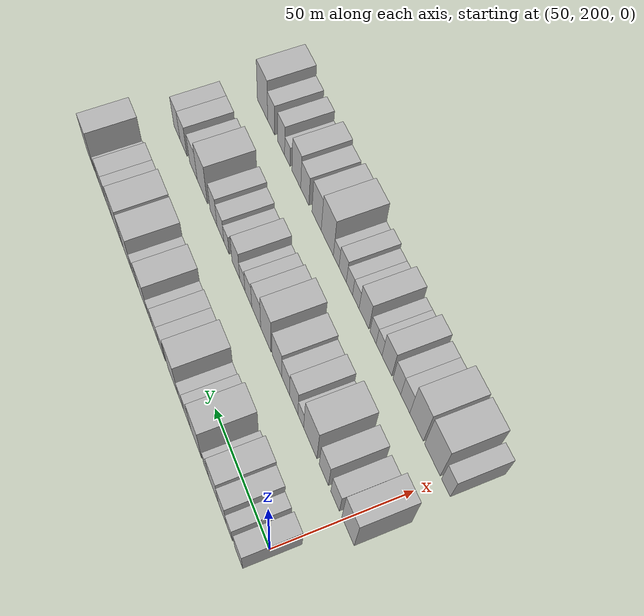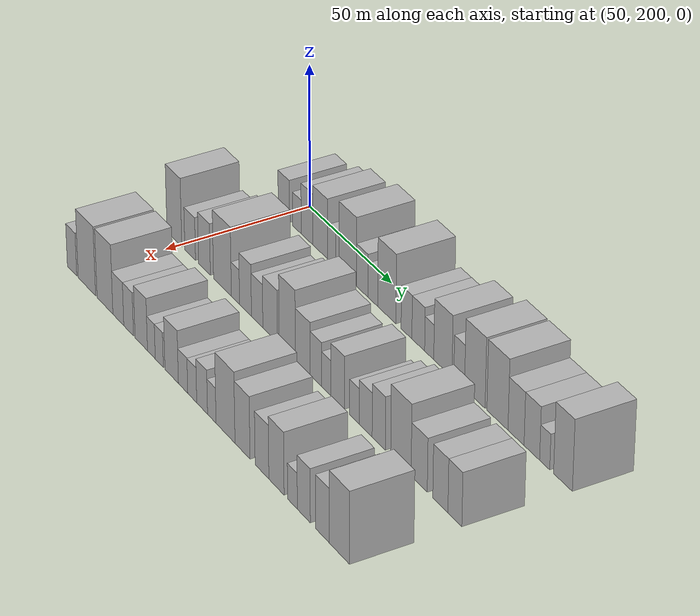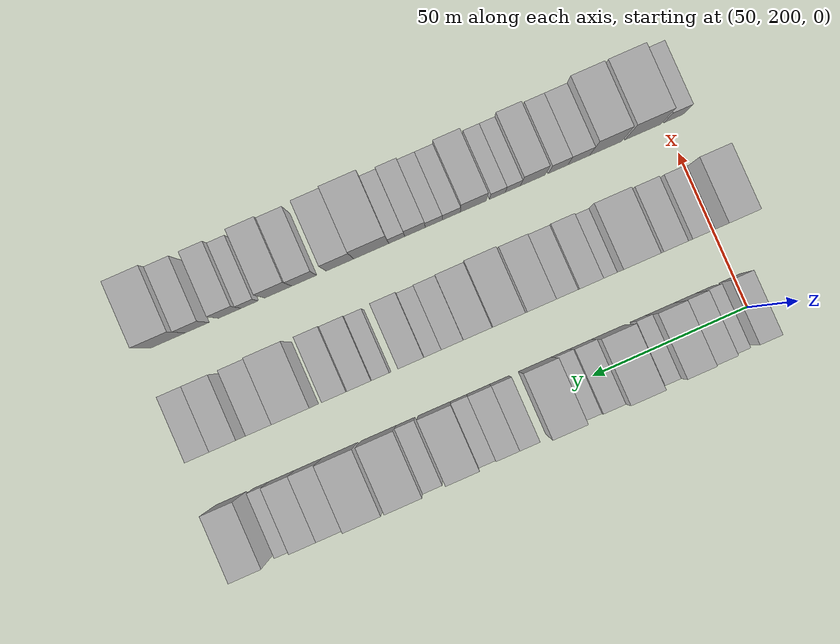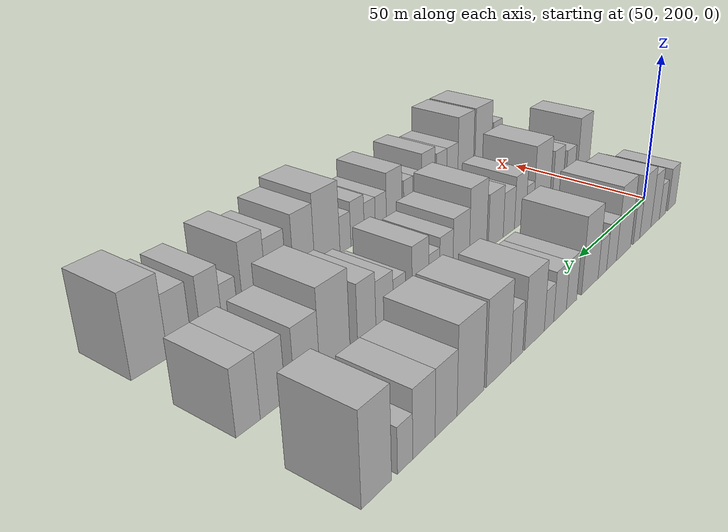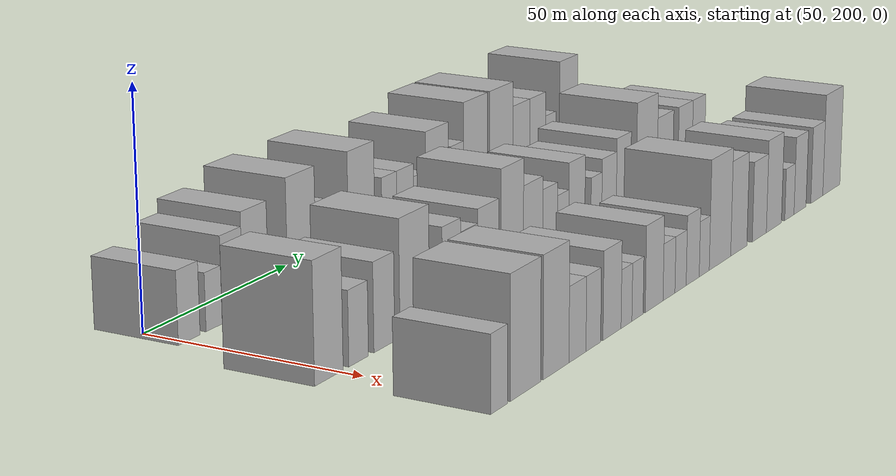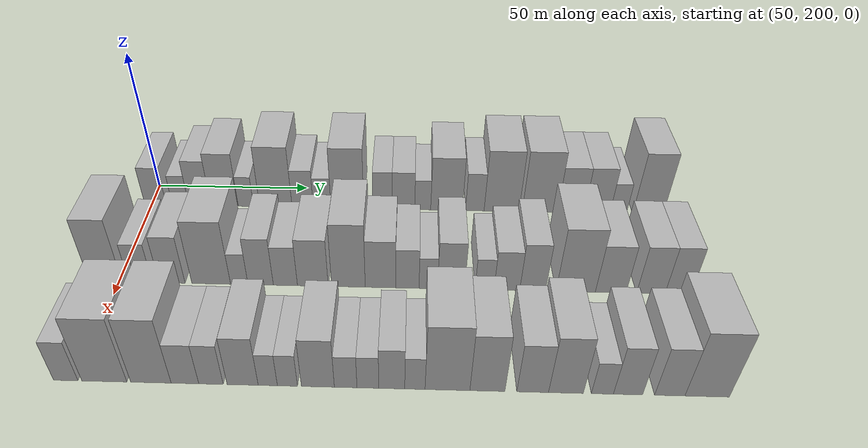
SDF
<sdf version="1.6">
 <world name="default">
  <model name="building_60">
   <static>1</static>
   <pose>50.0000 201.2474 0 0.000000 0.000000 0.000000</pose>
   <link name="link">
    <pose>0 0 7.50 0 0 0</pose>
    <collision name="collision"><geometry><box><size>20.0000 7.1210 15.0000</size></box></geometry></collision>
    <visual name="visual">
     <cast_shadows>0</cast_shadows>
     <geometry><box><size>20.0000 7.1210 15.0000</size></box></geometry>
     <material>
      <script>
       <uri>model://HANNAS_wall/materials/scripts</uri>
       <uri>model://HANNAS_wall/materials/textures</uri>
       <name>vrc/HANNAS_wall</name>
      </script>
     </material>
    </visual>
   </link>
  </model>
  <model name="building_61">
   <static>1</static>
   <pose>50.0000 209.5307 0 0.000000 0.000000 0.000000</pose>
   <link name="link">
    <pose>0 0 6.00 0 0 0</pose>
    <collision name="collision"><geometry><box><size>20.0000 5.4456 12.0000</size></box></geometry></collision>
    <visual name="visual">
     <cast_shadows>0</cast_shadows>
     <geometry><box><size>20.0000 5.4456 12.0000</size></box></geometry>
     <material>
      <script>
       <uri>model://HANNAS_wall/materials/scripts</uri>
       <uri>model://HANNAS_wall/materials/textures</uri>
       <name>vrc/HANNAS_wall</name>
      </script>
     </material>
    </visual>
   </link>
  </model>
  <model name="building_62">
   <static>1</static>
   <pose>50.0000 215.8734 0 0.000000 0.000000 0.000000</pose>
   <link name="link">
    <pose>0 0 9.00 0 0 0</pose>
    <collision name="collision"><geometry><box><size>20.0000 7.2397 18.0000</size></box></geometry></collision>
    <visual name="visual">
     <cast_shadows>0</cast_shadows>
     <geometry><box><size>20.0000 7.2397 18.0000</size></box></geometry>
     <material>
      <script>
       <uri>model://HANNAS_wall/materials/scripts</uri>
       <uri>model://HANNAS_wall/materials/textures</uri>
       <name>vrc/HANNAS_wall</name>
      </script>
     </material>
    </visual>
   </link>
  </model>
  <model name="building_63">
   <static>1</static>
   <pose>50.0000 224.0292 0 0.000000 0.000000 0.000000</pose>
   <link name="link">
    <pose>0 0 10.50 0 0 0</pose>
    <collision name="collision"><geometry><box><size>20.0000 9.0719 21.0000</size></box></geometry></collision>
    <visual name="visual">
     <cast_shadows>0</cast_shadows>
     <geometry><box><size>20.0000 9.0719 21.0000</size></box></geometry>
     <material>
      <script>
       <uri>model://HANNAS_wall/materials/scripts</uri>
       <uri>model://HANNAS_wall/materials/textures</uri>
       <name>vrc/HANNAS_wall</name>
      </script>
     </material>
    </visual>
   </link>
  </model>
  <model name="building_64">
   <static>1</static>
   <pose>50.0000 231.0862 0 0.000000 0.000000 0.000000</pose>
   <link name="link">
    <pose>0 0 6.00 0 0 0</pose>
    <collision name="collision"><geometry><box><size>20.0000 5.0421 12.0000</size></box></geometry></collision>
    <visual name="visual">
     <cast_shadows>0</cast_shadows>
     <geometry><box><size>20.0000 5.0421 12.0000</size></box></geometry>
     <material>
      <script>
       <uri>model://HANNAS_wall/materials/scripts</uri>
       <uri>model://HANNAS_wall/materials/textures</uri>
       <name>vrc/HANNAS_wall</name>
      </script>
     </material>
    </visual>
   </link>
  </model>
  <model name="building_65">
   <static>1</static>
   <pose>50.0000 240.9402 0 0.000000 0.000000 0.000000</pose>
   <link name="link">
    <pose>0 0 12.00 0 0 0</pose>
    <collision name="collision"><geometry><box><size>20.0000 10.6659 24.0000</size></box></geometry></collision>
    <visual name="visual">
     <cast_shadows>0</cast_shadows>
     <geometry><box><size>20.0000 10.6659 24.0000</size></box></geometry>
     <material>
      <script>
       <uri>model://HANNAS_wall/materials/scripts</uri>
       <uri>model://HANNAS_wall/materials/textures</uri>
       <name>vrc/HANNAS_wall</name>
      </script>
     </material>
    </visual>
   </link>
  </model>
  <model name="building_66">
   <static>1</static>
   <pose>50.0000 249.7533 0 0.000000 0.000000 0.000000</pose>
   <link name="link">
    <pose>0 0 7.50 0 0 0</pose>
    <collision name="collision"><geometry><box><size>20.0000 6.9602 15.0000</size></box></geometry></collision>
    <visual name="visual">
     <cast_shadows>0</cast_shadows>
     <geometry><box><size>20.0000 6.9602 15.0000</size></box></geometry>
     <material>
      <script>
       <uri>model://HANNAS_wall/materials/scripts</uri>
       <uri>model://HANNAS_wall/materials/textures</uri>
       <name>vrc/HANNAS_wall</name>
      </script>
     </material>
    </visual>
   </link>
  </model>
  <model name="building_67">
   <static>1</static>
   <pose>50.0000 256.1272 0 0.000000 0.000000 0.000000</pose>
   <link name="link">
    <pose>0 0 6.00 0 0 0</pose>
    <collision name="collision"><geometry><box><size>20.0000 5.7877 12.0000</size></box></geometry></collision>
    <visual name="visual">
     <cast_shadows>0</cast_shadows>
     <geometry><box><size>20.0000 5.7877 12.0000</size></box></geometry>
     <material>
      <script>
       <uri>model://HANNAS_wall/materials/scripts</uri>
       <uri>model://HANNAS_wall/materials/textures</uri>
       <name>vrc/HANNAS_wall</name>
      </script>
     </material>
    </visual>
   </link>
  </model>
  <model name="building_68">
   <static>1</static>
   <pose>50.0000 264.3679 0 0.000000 0.000000 0.000000</pose>
   <link name="link">
    <pose>0 0 12.00 0 0 0</pose>
    <collision name="collision"><geometry><box><size>20.0000 10.6935 24.0000</size></box></geometry></collision>
    <visual name="visual">
     <cast_shadows>0</cast_shadows>
     <geometry><box><size>20.0000 10.6935 24.0000</size></box></geometry>
     <material>
      <script>
       <uri>model://HANNAS_wall/materials/scripts</uri>
       <uri>model://HANNAS_wall/materials/textures</uri>
       <name>vrc/HANNAS_wall</name>
      </script>
     </material>
    </visual>
   </link>
  </model>
  <model name="building_69">
   <static>1</static>
   <pose>50.0000 275.8604 0 0.000000 0.000000 0.000000</pose>
   <link name="link">
    <pose>0 0 7.50 0 0 0</pose>
    <collision name="collision"><geometry><box><size>20.0000 6.2914 15.0000</size></box></geometry></collision>
    <visual name="visual">
     <cast_shadows>0</cast_shadows>
     <geometry><box><size>20.0000 6.2914 15.0000</size></box></geometry>
     <material>
      <script>
       <uri>model://HANNAS_wall/materials/scripts</uri>
       <uri>model://HANNAS_wall/materials/textures</uri>
       <name>vrc/HANNAS_wall</name>
      </script>
     </material>
    </visual>
   </link>
  </model>
  <model name="building_70">
   <static>1</static>
   <pose>50.0000 282.6776 0 0.000000 0.000000 0.000000</pose>
   <link name="link">
    <pose>0 0 7.50 0 0 0</pose>
    <collision name="collision"><geometry><box><size>20.0000 7.3430 15.0000</size></box></geometry></collision>
    <visual name="visual">
     <cast_shadows>0</cast_shadows>
     <geometry><box><size>20.0000 7.3430 15.0000</size></box></geometry>
     <material>
      <script>
       <uri>model://HANNAS_wall/materials/scripts</uri>
       <uri>model://HANNAS_wall/materials/textures</uri>
       <name>vrc/HANNAS_wall</name>
      </script>
     </material>
    </visual>
   </link>
  </model>
  <model name="building_71">
   <static>1</static>
   <pose>50.0000 288.9571 0 0.000000 0.000000 0.000000</pose>
   <link name="link">
    <pose>0 0 6.00 0 0 0</pose>
    <collision name="collision"><geometry><box><size>20.0000 5.2160 12.0000</size></box></geometry></collision>
    <visual name="visual">
     <cast_shadows>0</cast_shadows>
     <geometry><box><size>20.0000 5.2160 12.0000</size></box></geometry>
     <material>
      <script>
       <uri>model://HANNAS_wall/materials/scripts</uri>
       <uri>model://HANNAS_wall/materials/textures</uri>
       <name>vrc/HANNAS_wall</name>
      </script>
     </material>
    </visual>
   </link>
  </model>
  <model name="building_72">
   <static>1</static>
   <pose>50.0000 296.7286 0 0.000000 0.000000 0.000000</pose>
   <link name="link">
    <pose>0 0 10.50 0 0 0</pose>
    <collision name="collision"><geometry><box><size>20.0000 10.3270 21.0000</size></box></geometry></collision>
    <visual name="visual">
     <cast_shadows>0</cast_shadows>
     <geometry><box><size>20.0000 10.3270 21.0000</size></box></geometry>
     <material>
      <script>
       <uri>model://HANNAS_wall/materials/scripts</uri>
       <uri>model://HANNAS_wall/materials/textures</uri>
       <name>vrc/HANNAS_wall</name>
      </script>
     </material>
    </visual>
   </link>
  </model>
  <model name="building_73">
   <static>1</static>
   <pose>50.0000 305.9054 0 0.000000 0.000000 0.000000</pose>
   <link name="link">
    <pose>0 0 7.50 0 0 0</pose>
    <collision name="collision"><geometry><box><size>20.0000 6.0267 15.0000</size></box></geometry></collision>
    <visual name="visual">
     <cast_shadows>0</cast_shadows>
     <geometry><box><size>20.0000 6.0267 15.0000</size></box></geometry>
     <material>
      <script>
       <uri>model://HANNAS_wall/materials/scripts</uri>
       <uri>model://HANNAS_wall/materials/textures</uri>
       <name>vrc/HANNAS_wall</name>
      </script>
     </material>
    </visual>
   </link>
  </model>
  <model name="building_74">
   <static>1</static>
   <pose>50.0000 314.5827 0 0.000000 0.000000 0.000000</pose>
   <link name="link">
    <pose>0 0 12.00 0 0 0</pose>
    <collision name="collision"><geometry><box><size>20.0000 11.3279 24.0000</size></box></geometry></collision>
    <visual name="visual">
     <cast_shadows>0</cast_shadows>
     <geometry><box><size>20.0000 11.3279 24.0000</size></box></geometry>
     <material>
      <script>
       <uri>model://HANNAS_wall/materials/scripts</uri>
       <uri>model://HANNAS_wall/materials/textures</uri>
       <name>vrc/HANNAS_wall</name>
      </script>
     </material>
    </visual>
   </link>
  </model>
  <model name="building_75">
   <static>1</static>
   <pose>50.0000 326.9837 0 0.000000 0.000000 0.000000</pose>
   <link name="link">
    <pose>0 0 12.00 0 0 0</pose>
    <collision name="collision"><geometry><box><size>20.0000 11.4740 24.0000</size></box></geometry></collision>
    <visual name="visual">
     <cast_shadows>0</cast_shadows>
     <geometry><box><size>20.0000 11.4740 24.0000</size></box></geometry>
     <material>
      <script>
       <uri>model://HANNAS_wall/materials/scripts</uri>
       <uri>model://HANNAS_wall/materials/textures</uri>
       <name>vrc/HANNAS_wall</name>
      </script>
     </material>
    </visual>
   </link>
  </model>
  <model name="building_76">
   <static>1</static>
   <pose>50.0000 337.0319 0 0.000000 0.000000 0.000000</pose>
   <link name="link">
    <pose>0 0 9.00 0 0 0</pose>
    <collision name="collision"><geometry><box><size>20.0000 8.6222 18.0000</size></box></geometry></collision>
    <visual name="visual">
     <cast_shadows>0</cast_shadows>
     <geometry><box><size>20.0000 8.6222 18.0000</size></box></geometry>
     <material>
      <script>
       <uri>model://HANNAS_wall/materials/scripts</uri>
       <uri>model://HANNAS_wall/materials/textures</uri>
       <name>vrc/HANNAS_wall</name>
      </script>
     </material>
    </visual>
   </link>
  </model>
  <model name="building_77">
   <static>1</static>
   <pose>50.0000 345.4763 0 0.000000 0.000000 0.000000</pose>
   <link name="link">
    <pose>0 0 9.00 0 0 0</pose>
    <collision name="collision"><geometry><box><size>20.0000 8.2667 18.0000</size></box></geometry></collision>
    <visual name="visual">
     <cast_shadows>0</cast_shadows>
     <geometry><box><size>20.0000 8.2667 18.0000</size></box></geometry>
     <material>
      <script>
       <uri>model://HANNAS_wall/materials/scripts</uri>
       <uri>model://HANNAS_wall/materials/textures</uri>
       <name>vrc/HANNAS_wall</name>
      </script>
     </material>
    </visual>
   </link>
  </model>
  <model name="building_78">
   <static>1</static>
   <pose>50.0000 352.2706 0 0.000000 0.000000 0.000000</pose>
   <link name="link">
    <pose>0 0 6.00 0 0 0</pose>
    <collision name="collision"><geometry><box><size>20.0000 5.3217 12.0000</size></box></geometry></collision>
    <visual name="visual">
     <cast_shadows>0</cast_shadows>
     <geometry><box><size>20.0000 5.3217 12.0000</size></box></geometry>
     <material>
      <script>
       <uri>model://HANNAS_wall/materials/scripts</uri>
       <uri>model://HANNAS_wall/materials/textures</uri>
       <name>vrc/HANNAS_wall</name>
      </script>
     </material>
    </visual>
   </link>
  </model>
  <model name="building_79">
   <static>1</static>
   <pose>50.0000 361.8239 0 0.000000 0.000000 0.000000</pose>
   <link name="link">
    <pose>0 0 12.00 0 0 0</pose>
    <collision name="collision"><geometry><box><size>20.0000 9.7850 24.0000</size></box></geometry></collision>
    <visual name="visual">
     <cast_shadows>0</cast_shadows>
     <geometry><box><size>20.0000 9.7850 24.0000</size></box></geometry>
     <material>
      <script>
       <uri>model://HANNAS_wall/materials/scripts</uri>
       <uri>model://HANNAS_wall/materials/textures</uri>
       <name>vrc/HANNAS_wall</name>
      </script>
     </material>
    </visual>
   </link>
  </model>
  <model name="building_144">
   <static>1</static>
   <pose>85.0000 196.1090 0 0.000000 0.000000 0.000000</pose>
   <link name="link">
    <pose>0 0 12.00 0 0 0</pose>
    <collision name="collision"><geometry><box><size>20.0000 9.7561 24.0000</size></box></geometry></collision>
    <visual name="visual">
     <cast_shadows>0</cast_shadows>
     <geometry><box><size>20.0000 9.7561 24.0000</size></box></geometry>
     <material>
      <script>
       <uri>model://HANNAS_wall/materials/scripts</uri>
       <uri>model://HANNAS_wall/materials/textures</uri>
       <name>vrc/HANNAS_wall</name>
      </script>
     </material>
    </visual>
   </link>
  </model>
  <model name="building_145">
   <static>1</static>
   <pose>85.0000 206.4608 0 0.000000 0.000000 0.000000</pose>
   <link name="link">
    <pose>0 0 7.50 0 0 0</pose>
    <collision name="collision"><geometry><box><size>20.0000 6.9476 15.0000</size></box></geometry></collision>
    <visual name="visual">
     <cast_shadows>0</cast_shadows>
     <geometry><box><size>20.0000 6.9476 15.0000</size></box></geometry>
     <material>
      <script>
       <uri>model://HANNAS_wall/materials/scripts</uri>
       <uri>model://HANNAS_wall/materials/textures</uri>
       <name>vrc/HANNAS_wall</name>
      </script>
     </material>
    </visual>
   </link>
  </model>
  <model name="building_146">
   <static>1</static>
   <pose>85.0000 215.7360 0 0.000000 0.000000 0.000000</pose>
   <link name="link">
    <pose>0 0 9.00 0 0 0</pose>
    <collision name="collision"><geometry><box><size>20.0000 7.6029 18.0000</size></box></geometry></collision>
    <visual name="visual">
     <cast_shadows>0</cast_shadows>
     <geometry><box><size>20.0000 7.6029 18.0000</size></box></geometry>
     <material>
      <script>
       <uri>model://HANNAS_wall/materials/scripts</uri>
       <uri>model://HANNAS_wall/materials/textures</uri>
       <name>vrc/HANNAS_wall</name>
      </script>
     </material>
    </visual>
   </link>
  </model>
  <model name="building_147">
   <static>1</static>
   <pose>85.0000 227.2074 0 0.000000 0.000000 0.000000</pose>
   <link name="link">
    <pose>0 0 12.00 0 0 0</pose>
    <collision name="collision"><geometry><box><size>20.0000 11.3399 24.0000</size></box></geometry></collision>
    <visual name="visual">
     <cast_shadows>0</cast_shadows>
     <geometry><box><size>20.0000 11.3399 24.0000</size></box></geometry>
     <material>
      <script>
       <uri>model://HANNAS_wall/materials/scripts</uri>
       <uri>model://HANNAS_wall/materials/textures</uri>
       <name>vrc/HANNAS_wall</name>
      </script>
     </material>
    </visual>
   </link>
  </model>
  <model name="building_148">
   <static>1</static>
   <pose>85.0000 235.4371 0 0.000000 0.000000 0.000000</pose>
   <link name="link">
    <pose>0 0 6.00 0 0 0</pose>
    <collision name="collision"><geometry><box><size>20.0000 5.1196 12.0000</size></box></geometry></collision>
    <visual name="visual">
     <cast_shadows>0</cast_shadows>
     <geometry><box><size>20.0000 5.1196 12.0000</size></box></geometry>
     <material>
      <script>
       <uri>model://HANNAS_wall/materials/scripts</uri>
       <uri>model://HANNAS_wall/materials/textures</uri>
       <name>vrc/HANNAS_wall</name>
      </script>
     </material>
    </visual>
   </link>
  </model>
  <model name="building_149">
   <static>1</static>
   <pose>85.0000 241.7086 0 0.000000 0.000000 0.000000</pose>
   <link name="link">
    <pose>0 0 9.00 0 0 0</pose>
    <collision name="collision"><geometry><box><size>20.0000 7.4233 18.0000</size></box></geometry></collision>
    <visual name="visual">
     <cast_shadows>0</cast_shadows>
     <geometry><box><size>20.0000 7.4233 18.0000</size></box></geometry>
     <material>
      <script>
       <uri>model://HANNAS_wall/materials/scripts</uri>
       <uri>model://HANNAS_wall/materials/textures</uri>
       <name>vrc/HANNAS_wall</name>
      </script>
     </material>
    </visual>
   </link>
  </model>
  <model name="building_150">
   <static>1</static>
   <pose>85.0000 248.9426 0 0.000000 0.000000 0.000000</pose>
   <link name="link">
    <pose>0 0 7.50 0 0 0</pose>
    <collision name="collision"><geometry><box><size>20.0000 7.0448 15.0000</size></box></geometry></collision>
    <visual name="visual">
     <cast_shadows>0</cast_shadows>
     <geometry><box><size>20.0000 7.0448 15.0000</size></box></geometry>
     <material>
      <script>
       <uri>model://HANNAS_wall/materials/scripts</uri>
       <uri>model://HANNAS_wall/materials/textures</uri>
       <name>vrc/HANNAS_wall</name>
      </script>
     </material>
    </visual>
   </link>
  </model>
  <model name="building_151">
   <static>1</static>
   <pose>85.0000 256.9491 0 0.000000 0.000000 0.000000</pose>
   <link name="link">
    <pose>0 0 9.00 0 0 0</pose>
    <collision name="collision"><geometry><box><size>20.0000 8.9681 18.0000</size></box></geometry></collision>
    <visual name="visual">
     <cast_shadows>0</cast_shadows>
     <geometry><box><size>20.0000 8.9681 18.0000</size></box></geometry>
     <material>
      <script>
       <uri>model://HANNAS_wall/materials/scripts</uri>
       <uri>model://HANNAS_wall/materials/textures</uri>
       <name>vrc/HANNAS_wall</name>
      </script>
     </material>
    </visual>
   </link>
  </model>
  <model name="building_152">
   <static>1</static>
   <pose>85.0000 267.3245 0 0.000000 0.000000 0.000000</pose>
   <link name="link">
    <pose>0 0 12.00 0 0 0</pose>
    <collision name="collision"><geometry><box><size>20.0000 9.7828 24.0000</size></box></geometry></collision>
    <visual name="visual">
     <cast_shadows>0</cast_shadows>
     <geometry><box><size>20.0000 9.7828 24.0000</size></box></geometry>
     <material>
      <script>
       <uri>model://HANNAS_wall/materials/scripts</uri>
       <uri>model://HANNAS_wall/materials/textures</uri>
       <name>vrc/HANNAS_wall</name>
      </script>
     </material>
    </visual>
   </link>
  </model>
  <model name="building_153">
   <static>1</static>
   <pose>85.0000 276.6133 0 0.000000 0.000000 0.000000</pose>
   <link name="link">
    <pose>0 0 9.00 0 0 0</pose>
    <collision name="collision"><geometry><box><size>20.0000 8.7950 18.0000</size></box></geometry></collision>
    <visual name="visual">
     <cast_shadows>0</cast_shadows>
     <geometry><box><size>20.0000 8.7950 18.0000</size></box></geometry>
     <material>
      <script>
       <uri>model://HANNAS_wall/materials/scripts</uri>
       <uri>model://HANNAS_wall/materials/textures</uri>
       <name>vrc/HANNAS_wall</name>
      </script>
     </material>
    </visual>
   </link>
  </model>
  <model name="building_154">
   <static>1</static>
   <pose>85.0000 284.3997 0 0.000000 0.000000 0.000000</pose>
   <link name="link">
    <pose>0 0 7.50 0 0 0</pose>
    <collision name="collision"><geometry><box><size>20.0000 6.7778 15.0000</size></box></geometry></collision>
    <visual name="visual">
     <cast_shadows>0</cast_shadows>
     <geometry><box><size>20.0000 6.7778 15.0000</size></box></geometry>
     <material>
      <script>
       <uri>model://HANNAS_wall/materials/scripts</uri>
       <uri>model://HANNAS_wall/materials/textures</uri>
       <name>vrc/HANNAS_wall</name>
      </script>
     </material>
    </visual>
   </link>
  </model>
  <model name="building_155">
   <static>1</static>
   <pose>85.0000 290.4662 0 0.000000 0.000000 0.000000</pose>
   <link name="link">
    <pose>0 0 6.00 0 0 0</pose>
    <collision name="collision"><geometry><box><size>20.0000 5.3551 12.0000</size></box></geometry></collision>
    <visual name="visual">
     <cast_shadows>0</cast_shadows>
     <geometry><box><size>20.0000 5.3551 12.0000</size></box></geometry>
     <material>
      <script>
       <uri>model://HANNAS_wall/materials/scripts</uri>
       <uri>model://HANNAS_wall/materials/textures</uri>
       <name>vrc/HANNAS_wall</name>
      </script>
     </material>
    </visual>
   </link>
  </model>
  <model name="building_156">
   <static>1</static>
   <pose>85.0000 297.0790 0 0.000000 0.000000 0.000000</pose>
   <link name="link">
    <pose>0 0 9.00 0 0 0</pose>
    <collision name="collision"><geometry><box><size>20.0000 7.8705 18.0000</size></box></geometry></collision>
    <visual name="visual">
     <cast_shadows>0</cast_shadows>
     <geometry><box><size>20.0000 7.8705 18.0000</size></box></geometry>
     <material>
      <script>
       <uri>model://HANNAS_wall/materials/scripts</uri>
       <uri>model://HANNAS_wall/materials/textures</uri>
       <name>vrc/HANNAS_wall</name>
      </script>
     </material>
    </visual>
   </link>
  </model>
  <model name="building_157">
   <static>1</static>
   <pose>85.0000 306.7472 0 0.000000 0.000000 0.000000</pose>
   <link name="link">
    <pose>0 0 6.00 0 0 0</pose>
    <collision name="collision"><geometry><box><size>20.0000 5.4659 12.0000</size></box></geometry></collision>
    <visual name="visual">
     <cast_shadows>0</cast_shadows>
     <geometry><box><size>20.0000 5.4659 12.0000</size></box></geometry>
     <material>
      <script>
       <uri>model://HANNAS_wall/materials/scripts</uri>
       <uri>model://HANNAS_wall/materials/textures</uri>
       <name>vrc/HANNAS_wall</name>
      </script>
     </material>
    </visual>
   </link>
  </model>
  <model name="building_158">
   <static>1</static>
   <pose>85.0000 313.1926 0 0.000000 0.000000 0.000000</pose>
   <link name="link">
    <pose>0 0 7.50 0 0 0</pose>
    <collision name="collision"><geometry><box><size>20.0000 7.4248 15.0000</size></box></geometry></collision>
    <visual name="visual">
     <cast_shadows>0</cast_shadows>
     <geometry><box><size>20.0000 7.4248 15.0000</size></box></geometry>
     <material>
      <script>
       <uri>model://HANNAS_wall/materials/scripts</uri>
       <uri>model://HANNAS_wall/materials/textures</uri>
       <name>vrc/HANNAS_wall</name>
      </script>
     </material>
    </visual>
   </link>
  </model>
  <model name="building_159">
   <static>1</static>
   <pose>85.0000 320.6244 0 0.000000 0.000000 0.000000</pose>
   <link name="link">
    <pose>0 0 9.00 0 0 0</pose>
    <collision name="collision"><geometry><box><size>20.0000 7.4389 18.0000</size></box></geometry></collision>
    <visual name="visual">
     <cast_shadows>0</cast_shadows>
     <geometry><box><size>20.0000 7.4389 18.0000</size></box></geometry>
     <material>
      <script>
       <uri>model://HANNAS_wall/materials/scripts</uri>
       <uri>model://HANNAS_wall/materials/textures</uri>
       <name>vrc/HANNAS_wall</name>
      </script>
     </material>
    </visual>
   </link>
  </model>
  <model name="building_160">
   <static>1</static>
   <pose>85.0000 332.9975 0 0.000000 0.000000 0.000000</pose>
   <link name="link">
    <pose>0 0 12.00 0 0 0</pose>
    <collision name="collision"><geometry><box><size>20.0000 11.3073 24.0000</size></box></geometry></collision>
    <visual name="visual">
     <cast_shadows>0</cast_shadows>
     <geometry><box><size>20.0000 11.3073 24.0000</size></box></geometry>
     <material>
      <script>
       <uri>model://HANNAS_wall/materials/scripts</uri>
       <uri>model://HANNAS_wall/materials/textures</uri>
       <name>vrc/HANNAS_wall</name>
      </script>
     </material>
    </visual>
   </link>
  </model>
  <model name="building_161">
   <static>1</static>
   <pose>85.0000 343.0592 0 0.000000 0.000000 0.000000</pose>
   <link name="link">
    <pose>0 0 9.00 0 0 0</pose>
    <collision name="collision"><geometry><box><size>20.0000 8.8162 18.0000</size></box></geometry></collision>
    <visual name="visual">
     <cast_shadows>0</cast_shadows>
     <geometry><box><size>20.0000 8.8162 18.0000</size></box></geometry>
     <material>
      <script>
       <uri>model://HANNAS_wall/materials/scripts</uri>
       <uri>model://HANNAS_wall/materials/textures</uri>
       <name>vrc/HANNAS_wall</name>
      </script>
     </material>
    </visual>
   </link>
  </model>
  <model name="building_162">
   <static>1</static>
   <pose>85.0000 354.5373 0 0.000000 0.000000 0.000000</pose>
   <link name="link">
    <pose>0 0 9.00 0 0 0</pose>
    <collision name="collision"><geometry><box><size>20.0000 8.1399 18.0000</size></box></geometry></collision>
    <visual name="visual">
     <cast_shadows>0</cast_shadows>
     <geometry><box><size>20.0000 8.1399 18.0000</size></box></geometry>
     <material>
      <script>
       <uri>model://HANNAS_wall/materials/scripts</uri>
       <uri>model://HANNAS_wall/materials/textures</uri>
       <name>vrc/HANNAS_wall</name>
      </script>
     </material>
    </visual>
   </link>
  </model>
  <model name="building_163">
   <static>1</static>
   <pose>85.0000 362.3222 0 0.000000 0.000000 0.000000</pose>
   <link name="link">
    <pose>0 0 9.00 0 0 0</pose>
    <collision name="collision"><geometry><box><size>20.0000 7.4299 18.0000</size></box></geometry></collision>
    <visual name="visual">
     <cast_shadows>0</cast_shadows>
     <geometry><box><size>20.0000 7.4299 18.0000</size></box></geometry>
     <material>
      <script>
       <uri>model://HANNAS_wall/materials/scripts</uri>
       <uri>model://HANNAS_wall/materials/textures</uri>
       <name>vrc/HANNAS_wall</name>
      </script>
     </material>
    </visual>
   </link>
  </model>
  <model name="building_225">
   <static>1</static>
   <pose>120.0000 197.1909 0 0.000000 0.000000 0.000000</pose>
   <link name="link">
    <pose>0 0 7.50 0 0 0</pose>
    <collision name="collision"><geometry><box><size>20.0000 6.3347 15.0000</size></box></geometry></collision>
    <visual name="visual">
     <cast_shadows>0</cast_shadows>
     <geometry><box><size>20.0000 6.3347 15.0000</size></box></geometry>
     <material>
      <script>
       <uri>model://HANNAS_wall/materials/scripts</uri>
       <uri>model://HANNAS_wall/materials/textures</uri>
       <name>vrc/HANNAS_wall</name>
      </script>
     </material>
    </visual>
   </link>
  </model>
  <model name="building_226">
   <static>1</static>
   <pose>120.0000 207.1888 0 0.000000 0.000000 0.000000</pose>
   <link name="link">
    <pose>0 0 12.00 0 0 0</pose>
    <collision name="collision"><geometry><box><size>20.0000 11.6610 24.0000</size></box></geometry></collision>
    <visual name="visual">
     <cast_shadows>0</cast_shadows>
     <geometry><box><size>20.0000 11.6610 24.0000</size></box></geometry>
     <material>
      <script>
       <uri>model://HANNAS_wall/materials/scripts</uri>
       <uri>model://HANNAS_wall/materials/textures</uri>
       <name>vrc/HANNAS_wall</name>
      </script>
     </material>
    </visual>
   </link>
  </model>
  <model name="building_227">
   <static>1</static>
   <pose>120.0000 219.2376 0 0.000000 0.000000 0.000000</pose>
   <link name="link">
    <pose>0 0 12.00 0 0 0</pose>
    <collision name="collision"><geometry><box><size>20.0000 10.4367 24.0000</size></box></geometry></collision>
    <visual name="visual">
     <cast_shadows>0</cast_shadows>
     <geometry><box><size>20.0000 10.4367 24.0000</size></box></geometry>
     <material>
      <script>
       <uri>model://HANNAS_wall/materials/scripts</uri>
       <uri>model://HANNAS_wall/materials/textures</uri>
       <name>vrc/HANNAS_wall</name>
      </script>
     </material>
    </visual>
   </link>
  </model>
  <model name="building_228">
   <static>1</static>
   <pose>120.0000 228.0145 0 0.000000 0.000000 0.000000</pose>
   <link name="link">
    <pose>0 0 7.50 0 0 0</pose>
    <collision name="collision"><geometry><box><size>20.0000 7.1171 15.0000</size></box></geometry></collision>
    <visual name="visual">
     <cast_shadows>0</cast_shadows>
     <geometry><box><size>20.0000 7.1171 15.0000</size></box></geometry>
     <material>
      <script>
       <uri>model://HANNAS_wall/materials/scripts</uri>
       <uri>model://HANNAS_wall/materials/textures</uri>
       <name>vrc/HANNAS_wall</name>
      </script>
     </material>
    </visual>
   </link>
  </model>
  <model name="building_229">
   <static>1</static>
   <pose>120.0000 234.7167 0 0.000000 0.000000 0.000000</pose>
   <link name="link">
    <pose>0 0 7.50 0 0 0</pose>
    <collision name="collision"><geometry><box><size>20.0000 6.2872 15.0000</size></box></geometry></collision>
    <visual name="visual">
     <cast_shadows>0</cast_shadows>
     <geometry><box><size>20.0000 6.2872 15.0000</size></box></geometry>
     <material>
      <script>
       <uri>model://HANNAS_wall/materials/scripts</uri>
       <uri>model://HANNAS_wall/materials/textures</uri>
       <name>vrc/HANNAS_wall</name>
      </script>
     </material>
    </visual>
   </link>
  </model>
  <model name="building_230">
   <static>1</static>
   <pose>120.0000 242.8513 0 0.000000 0.000000 0.000000</pose>
   <link name="link">
    <pose>0 0 9.00 0 0 0</pose>
    <collision name="collision"><geometry><box><size>20.0000 7.9821 18.0000</size></box></geometry></collision>
    <visual name="visual">
     <cast_shadows>0</cast_shadows>
     <geometry><box><size>20.0000 7.9821 18.0000</size></box></geometry>
     <material>
      <script>
       <uri>model://HANNAS_wall/materials/scripts</uri>
       <uri>model://HANNAS_wall/materials/textures</uri>
       <name>vrc/HANNAS_wall</name>
      </script>
     </material>
    </visual>
   </link>
  </model>
  <model name="building_231">
   <static>1</static>
   <pose>120.0000 249.3038 0 0.000000 0.000000 0.000000</pose>
   <link name="link">
    <pose>0 0 6.00 0 0 0</pose>
    <collision name="collision"><geometry><box><size>20.0000 4.9229 12.0000</size></box></geometry></collision>
    <visual name="visual">
     <cast_shadows>0</cast_shadows>
     <geometry><box><size>20.0000 4.9229 12.0000</size></box></geometry>
     <material>
      <script>
       <uri>model://HANNAS_wall/materials/scripts</uri>
       <uri>model://HANNAS_wall/materials/textures</uri>
       <name>vrc/HANNAS_wall</name>
      </script>
     </material>
    </visual>
   </link>
  </model>
  <model name="building_232">
   <static>1</static>
   <pose>120.0000 254.3354 0 0.000000 0.000000 0.000000</pose>
   <link name="link">
    <pose>0 0 6.00 0 0 0</pose>
    <collision name="collision"><geometry><box><size>20.0000 5.1401 12.0000</size></box></geometry></collision>
    <visual name="visual">
     <cast_shadows>0</cast_shadows>
     <geometry><box><size>20.0000 5.1401 12.0000</size></box></geometry>
     <material>
      <script>
       <uri>model://HANNAS_wall/materials/scripts</uri>
       <uri>model://HANNAS_wall/materials/textures</uri>
       <name>vrc/HANNAS_wall</name>
      </script>
     </material>
    </visual>
   </link>
  </model>
  <model name="building_233">
   <static>1</static>
   <pose>120.0000 262.1131 0 0.000000 0.000000 0.000000</pose>
   <link name="link">
    <pose>0 0 9.00 0 0 0</pose>
    <collision name="collision"><geometry><box><size>20.0000 8.4153 18.0000</size></box></geometry></collision>
    <visual name="visual">
     <cast_shadows>0</cast_shadows>
     <geometry><box><size>20.0000 8.4153 18.0000</size></box></geometry>
     <material>
      <script>
       <uri>model://HANNAS_wall/materials/scripts</uri>
       <uri>model://HANNAS_wall/materials/textures</uri>
       <name>vrc/HANNAS_wall</name>
      </script>
     </material>
    </visual>
   </link>
  </model>
  <model name="building_234">
   <static>1</static>
   <pose>120.0000 269.2053 0 0.000000 0.000000 0.000000</pose>
   <link name="link">
    <pose>0 0 6.00 0 0 0</pose>
    <collision name="collision"><geometry><box><size>20.0000 5.7690 12.0000</size></box></geometry></collision>
    <visual name="visual">
     <cast_shadows>0</cast_shadows>
     <geometry><box><size>20.0000 5.7690 12.0000</size></box></geometry>
     <material>
      <script>
       <uri>model://HANNAS_wall/materials/scripts</uri>
       <uri>model://HANNAS_wall/materials/textures</uri>
       <name>vrc/HANNAS_wall</name>
      </script>
     </material>
    </visual>
   </link>
  </model>
  <model name="building_235">
   <static>1</static>
   <pose>120.0000 274.8668 0 0.000000 0.000000 0.000000</pose>
   <link name="link">
    <pose>0 0 6.00 0 0 0</pose>
    <collision name="collision"><geometry><box><size>20.0000 5.5539 12.0000</size></box></geometry></collision>
    <visual name="visual">
     <cast_shadows>0</cast_shadows>
     <geometry><box><size>20.0000 5.5539 12.0000</size></box></geometry>
     <material>
      <script>
       <uri>model://HANNAS_wall/materials/scripts</uri>
       <uri>model://HANNAS_wall/materials/textures</uri>
       <name>vrc/HANNAS_wall</name>
      </script>
     </material>
    </visual>
   </link>
  </model>
  <model name="building_236">
   <static>1</static>
   <pose>120.0000 280.9395 0 0.000000 0.000000 0.000000</pose>
   <link name="link">
    <pose>0 0 7.50 0 0 0</pose>
    <collision name="collision"><geometry><box><size>20.0000 6.5914 15.0000</size></box></geometry></collision>
    <visual name="visual">
     <cast_shadows>0</cast_shadows>
     <geometry><box><size>20.0000 6.5914 15.0000</size></box></geometry>
     <material>
      <script>
       <uri>model://HANNAS_wall/materials/scripts</uri>
       <uri>model://HANNAS_wall/materials/textures</uri>
       <name>vrc/HANNAS_wall</name>
      </script>
     </material>
    </visual>
   </link>
  </model>
  <model name="building_237">
   <static>1</static>
   <pose>120.0000 286.8151 0 0.000000 0.000000 0.000000</pose>
   <link name="link">
    <pose>0 0 6.00 0 0 0</pose>
    <collision name="collision"><geometry><box><size>20.0000 5.1600 12.0000</size></box></geometry></collision>
    <visual name="visual">
     <cast_shadows>0</cast_shadows>
     <geometry><box><size>20.0000 5.1600 12.0000</size></box></geometry>
     <material>
      <script>
       <uri>model://HANNAS_wall/materials/scripts</uri>
       <uri>model://HANNAS_wall/materials/textures</uri>
       <name>vrc/HANNAS_wall</name>
      </script>
     </material>
    </visual>
   </link>
  </model>
  <model name="building_238">
   <static>1</static>
   <pose>120.0000 295.0758 0 0.000000 0.000000 0.000000</pose>
   <link name="link">
    <pose>0 0 12.00 0 0 0</pose>
    <collision name="collision"><geometry><box><size>20.0000 11.3612 24.0000</size></box></geometry></collision>
    <visual name="visual">
     <cast_shadows>0</cast_shadows>
     <geometry><box><size>20.0000 11.3612 24.0000</size></box></geometry>
     <material>
      <script>
       <uri>model://HANNAS_wall/materials/scripts</uri>
       <uri>model://HANNAS_wall/materials/textures</uri>
       <name>vrc/HANNAS_wall</name>
      </script>
     </material>
    </visual>
   </link>
  </model>
  <model name="building_239">
   <static>1</static>
   <pose>120.0000 305.1924 0 0.000000 0.000000 0.000000</pose>
   <link name="link">
    <pose>0 0 10.50 0 0 0</pose>
    <collision name="collision"><geometry><box><size>20.0000 8.8720 21.0000</size></box></geometry></collision>
    <visual name="visual">
     <cast_shadows>0</cast_shadows>
     <geometry><box><size>20.0000 8.8720 21.0000</size></box></geometry>
     <material>
      <script>
       <uri>model://HANNAS_wall/materials/scripts</uri>
       <uri>model://HANNAS_wall/materials/textures</uri>
       <name>vrc/HANNAS_wall</name>
      </script>
     </material>
    </visual>
   </link>
  </model>
  <model name="building_240">
   <static>1</static>
   <pose>120.0000 316.6258 0 0.000000 0.000000 0.000000</pose>
   <link name="link">
    <pose>0 0 9.00 0 0 0</pose>
    <collision name="collision"><geometry><box><size>20.0000 7.9949 18.0000</size></box></geometry></collision>
    <visual name="visual">
     <cast_shadows>0</cast_shadows>
     <geometry><box><size>20.0000 7.9949 18.0000</size></box></geometry>
     <material>
      <script>
       <uri>model://HANNAS_wall/materials/scripts</uri>
       <uri>model://HANNAS_wall/materials/textures</uri>
       <name>vrc/HANNAS_wall</name>
      </script>
     </material>
    </visual>
   </link>
  </model>
  <model name="building_241">
   <static>1</static>
   <pose>120.0000 325.0127 0 0.000000 0.000000 0.000000</pose>
   <link name="link">
    <pose>0 0 10.50 0 0 0</pose>
    <collision name="collision"><geometry><box><size>20.0000 8.7790 21.0000</size></box></geometry></collision>
    <visual name="visual">
     <cast_shadows>0</cast_shadows>
     <geometry><box><size>20.0000 8.7790 21.0000</size></box></geometry>
     <material>
      <script>
       <uri>model://HANNAS_wall/materials/scripts</uri>
       <uri>model://HANNAS_wall/materials/textures</uri>
       <name>vrc/HANNAS_wall</name>
      </script>
     </material>
    </visual>
   </link>
  </model>
  <model name="building_242">
   <static>1</static>
   <pose>120.0000 334.1704 0 0.000000 0.000000 0.000000</pose>
   <link name="link">
    <pose>0 0 6.00 0 0 0</pose>
    <collision name="collision"><geometry><box><size>20.0000 5.5363 12.0000</size></box></geometry></collision>
    <visual name="visual">
     <cast_shadows>0</cast_shadows>
     <geometry><box><size>20.0000 5.5363 12.0000</size></box></geometry>
     <material>
      <script>
       <uri>model://HANNAS_wall/materials/scripts</uri>
       <uri>model://HANNAS_wall/materials/textures</uri>
       <name>vrc/HANNAS_wall</name>
      </script>
     </material>
    </visual>
   </link>
  </model>
  <model name="building_243">
   <static>1</static>
   <pose>120.0000 340.6078 0 0.000000 0.000000 0.000000</pose>
   <link name="link">
    <pose>0 0 9.00 0 0 0</pose>
    <collision name="collision"><geometry><box><size>20.0000 7.3387 18.0000</size></box></geometry></collision>
    <visual name="visual">
     <cast_shadows>0</cast_shadows>
     <geometry><box><size>20.0000 7.3387 18.0000</size></box></geometry>
     <material>
      <script>
       <uri>model://HANNAS_wall/materials/scripts</uri>
       <uri>model://HANNAS_wall/materials/textures</uri>
       <name>vrc/HANNAS_wall</name>
      </script>
     </material>
    </visual>
   </link>
  </model>
  <model name="building_244">
   <static>1</static>
   <pose>120.0000 351.0678 0 0.000000 0.000000 0.000000</pose>
   <link name="link">
    <pose>0 0 9.00 0 0 0</pose>
    <collision name="collision"><geometry><box><size>20.0000 7.5813 18.0000</size></box></geometry></collision>
    <visual name="visual">
     <cast_shadows>0</cast_shadows>
     <geometry><box><size>20.0000 7.5813 18.0000</size></box></geometry>
     <material>
      <script>
       <uri>model://HANNAS_wall/materials/scripts</uri>
       <uri>model://HANNAS_wall/materials/textures</uri>
       <name>vrc/HANNAS_wall</name>
      </script>
     </material>
    </visual>
   </link>
  </model>
  <model name="building_245">
   <static>1</static>
   <pose>120.0000 360.4076 0 0.000000 0.000000 0.000000</pose>
   <link name="link">
    <pose>0 0 12.00 0 0 0</pose>
    <collision name="collision"><geometry><box><size>20.0000 11.0984 24.0000</size></box></geometry></collision>
    <visual name="visual">
     <cast_shadows>0</cast_shadows>
     <geometry><box><size>20.0000 11.0984 24.0000</size></box></geometry>
     <material>
      <script>
       <uri>model://HANNAS_wall/materials/scripts</uri>
       <uri>model://HANNAS_wall/materials/textures</uri>
       <name>vrc/HANNAS_wall</name>
      </script>
     </material>
    </visual>
   </link>
  </model>
 </world>
</sdf>
